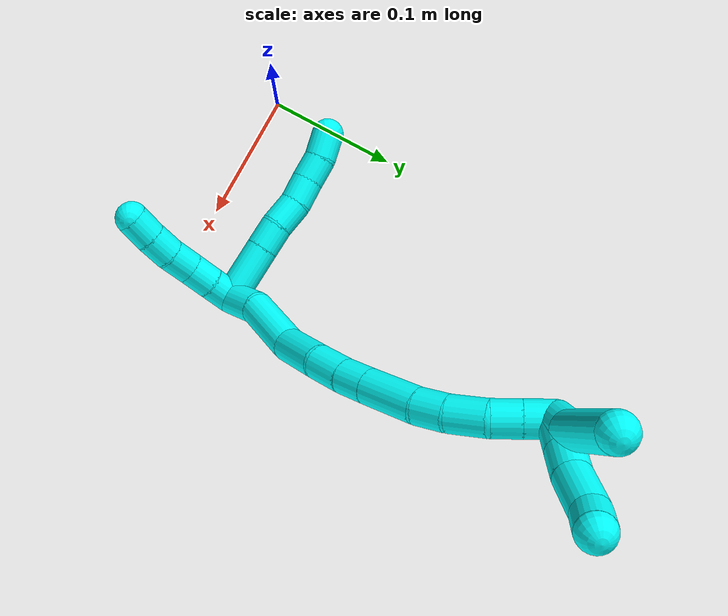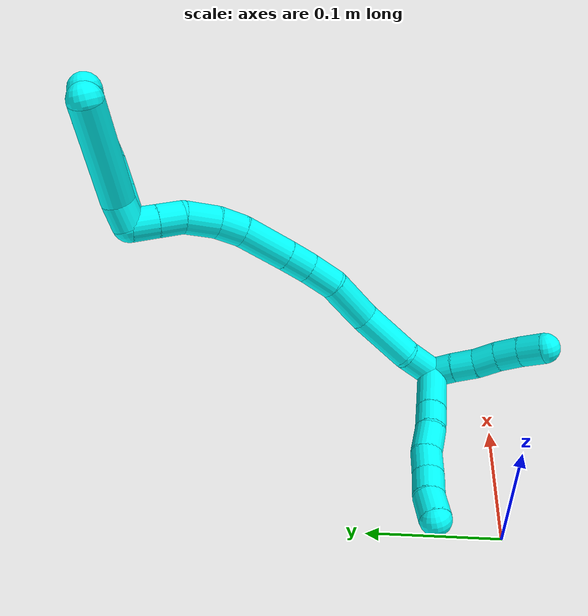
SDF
<sdf version="1.7">
 <world name="default">
  <model name="3">
   <static>0</static>
   <link name="3">
    <collision name="collision-cylinder-e_1_2_8">
     <pose>-0.019327 -0.008584 -0.007434 2.28451 -1.03957 -1.79418</pose>
     <geometry><cylinder><radius>0.0125</radius><length>0.044832</length></cylinder></geometry>
     <surface>
      <friction><ode><mu>1.16</mu><mu2>1.16</mu2><slip1>0</slip1><slip2>0</slip2></ode></friction>
      <contact><ode><kp>1e+06</kp><kd>1</kd><max_vel>0</max_vel><min_depth>0.001</min_depth></ode></contact>
     </surface>
    </collision>
    <visual name="visual-cylinder-e_1_2_8">
     <pose>-0.019327 -0.008584 -0.007434 2.28451 -1.03957 -1.79418</pose>
     <geometry><cylinder><radius>0.0125</radius><length>0.044832</length></cylinder></geometry>
     <material><ambient>0.003922 1 0.996078 1</ambient></material>
    </visual>
    <collision name="collision-cylinder-e_2_8_9">
     <pose>-0.047657 -0.021103 -0.018401 2.30239 -1.03976 -1.81757</pose>
     <geometry><cylinder><radius>0.0125</radius><length>0.020883</length></cylinder></geometry>
     <surface>
      <friction><ode><mu>1.16</mu><mu2>1.16</mu2><slip1>0</slip1><slip2>0</slip2></ode></friction>
      <contact><ode><kp>1e+06</kp><kd>1</kd><max_vel>0</max_vel><min_depth>0.001</min_depth></ode></contact>
     </surface>
    </collision>
    <visual name="visual-cylinder-e_2_8_9">
     <pose>-0.047657 -0.021103 -0.018401 2.30239 -1.03976 -1.81757</pose>
     <geometry><cylinder><radius>0.0125</radius><length>0.020883</length></cylinder></geometry>
     <material><ambient>0.003922 1 0.996078 1</ambient></material>
    </visual>
    <collision name="collision-cylinder-e_3_9_10">
     <pose>-0.066679 -0.027612 -0.026783 2.65363 -1.06949 -2.34584</pose>
     <geometry><cylinder><radius>0.0125</radius><length>0.022848</length></cylinder></geometry>
     <surface>
      <friction><ode><mu>1.16</mu><mu2>1.16</mu2><slip1>0</slip1><slip2>0</slip2></ode></friction>
      <contact><ode><kp>1e+06</kp><kd>1</kd><max_vel>0</max_vel><min_depth>0.001</min_depth></ode></contact>
     </surface>
    </collision>
    <visual name="visual-cylinder-e_3_9_10">
     <pose>-0.066679 -0.027612 -0.026783 2.65363 -1.06949 -2.34584</pose>
     <geometry><cylinder><radius>0.0125</radius><length>0.022848</length></cylinder></geometry>
     <material><ambient>0.003922 1 0.996078 1</ambient></material>
    </visual>
    <collision name="collision-cylinder-e_4_10_11">
     <pose>-0.084872 -0.034604 -0.036016 2.35236 -0.92003 -1.74364</pose>
     <geometry><cylinder><radius>0.0125</radius><length>0.020548</length></cylinder></geometry>
     <surface>
      <friction><ode><mu>1.16</mu><mu2>1.16</mu2><slip1>0</slip1><slip2>0</slip2></ode></friction>
      <contact><ode><kp>1e+06</kp><kd>1</kd><max_vel>0</max_vel><min_depth>0.001</min_depth></ode></contact>
     </surface>
    </collision>
    <visual name="visual-cylinder-e_4_10_11">
     <pose>-0.084872 -0.034604 -0.036016 2.35236 -0.92003 -1.74364</pose>
     <geometry><cylinder><radius>0.0125</radius><length>0.020548</length></cylinder></geometry>
     <material><ambient>0.003922 1 0.996078 1</ambient></material>
    </visual>
    <collision name="collision-cylinder-e_5_11_12">
     <pose>-0.101584 -0.043265 -0.043948 2.26713 -0.995962 -1.72141</pose>
     <geometry><cylinder><radius>0.0125</radius><length>0.020346</length></cylinder></geometry>
     <surface>
      <friction><ode><mu>1.16</mu><mu2>1.16</mu2><slip1>0</slip1><slip2>0</slip2></ode></friction>
      <contact><ode><kp>1e+06</kp><kd>1</kd><max_vel>0</max_vel><min_depth>0.001</min_depth></ode></contact>
     </surface>
    </collision>
    <visual name="visual-cylinder-e_5_11_12">
     <pose>-0.101584 -0.043265 -0.043948 2.26713 -0.995962 -1.72141</pose>
     <geometry><cylinder><radius>0.0125</radius><length>0.020346</length></cylinder></geometry>
     <material><ambient>0.003922 1 0.996078 1</ambient></material>
    </visual>
    <collision name="collision-cylinder-e_6_12_6">
     <pose>-0.117417 -0.053497 -0.051548 2.16573 -0.789742 -1.33137</pose>
     <geometry><cylinder><radius>0.0125</radius><length>0.020542</length></cylinder></geometry>
     <surface>
      <friction><ode><mu>1.16</mu><mu2>1.16</mu2><slip1>0</slip1><slip2>0</slip2></ode></friction>
      <contact><ode><kp>1e+06</kp><kd>1</kd><max_vel>0</max_vel><min_depth>0.001</min_depth></ode></contact>
     </surface>
    </collision>
    <visual name="visual-cylinder-e_6_12_6">
     <pose>-0.117417 -0.053497 -0.051548 2.16573 -0.789742 -1.33137</pose>
     <geometry><cylinder><radius>0.0125</radius><length>0.020542</length></cylinder></geometry>
     <material><ambient>0.003922 1 0.996078 1</ambient></material>
    </visual>
    <collision name="collision-cylinder-e_1_2_13">
     <pose>0.002968 -0.009422 0.001557 1.40705 0.301329 0.256169</pose>
     <geometry><cylinder><radius>0.0125</radius><length>0.02</length></cylinder></geometry>
     <surface>
      <friction><ode><mu>1.16</mu><mu2>1.16</mu2><slip1>0</slip1><slip2>0</slip2></ode></friction>
      <contact><ode><kp>1e+06</kp><kd>1</kd><max_vel>0</max_vel><min_depth>0.001</min_depth></ode></contact>
     </surface>
    </collision>
    <visual name="visual-cylinder-e_1_2_13">
     <pose>0.002968 -0.009422 0.001557 1.40705 0.301329 0.256169</pose>
     <geometry><cylinder><radius>0.0125</radius><length>0.02</length></cylinder></geometry>
     <material><ambient>0.003922 1 0.996078 1</ambient></material>
    </visual>
    <collision name="collision-cylinder-e_2_13_14">
     <pose>0.009097 -0.028279 0.004098 1.46679 0.321677 0.290315</pose>
     <geometry><cylinder><radius>0.0125</radius><length>0.02</length></cylinder></geometry>
     <surface>
      <friction><ode><mu>1.16</mu><mu2>1.16</mu2><slip1>0</slip1><slip2>0</slip2></ode></friction>
      <contact><ode><kp>1e+06</kp><kd>1</kd><max_vel>0</max_vel><min_depth>0.001</min_depth></ode></contact>
     </surface>
    </collision>
    <visual name="visual-cylinder-e_2_13_14">
     <pose>0.009097 -0.028279 0.004098 1.46679 0.321677 0.290315</pose>
     <geometry><cylinder><radius>0.0125</radius><length>0.02</length></cylinder></geometry>
     <material><ambient>0.003922 1 0.996078 1</ambient></material>
    </visual>
    <collision name="collision-cylinder-e_3_14_15">
     <pose>0.014909 -0.047029 0.00758 1.30895 0.268181 0.206279</pose>
     <geometry><cylinder><radius>0.0125</radius><length>0.02</length></cylinder></geometry>
     <surface>
      <friction><ode><mu>1.16</mu><mu2>1.16</mu2><slip1>0</slip1><slip2>0</slip2></ode></friction>
      <contact><ode><kp>1e+06</kp><kd>1</kd><max_vel>0</max_vel><min_depth>0.001</min_depth></ode></contact>
     </surface>
    </collision>
    <visual name="visual-cylinder-e_3_14_15">
     <pose>0.014909 -0.047029 0.00758 1.30895 0.268181 0.206279</pose>
     <geometry><cylinder><radius>0.0125</radius><length>0.02</length></cylinder></geometry>
     <material><ambient>0.003922 1 0.996078 1</ambient></material>
    </visual>
    <collision name="collision-cylinder-e_4_15_16">
     <pose>0.019379 -0.066024 0.011798 1.39475 0.183058 0.153496</pose>
     <geometry><cylinder><radius>0.0125</radius><length>0.02</length></cylinder></geometry>
     <surface>
      <friction><ode><mu>1.16</mu><mu2>1.16</mu2><slip1>0</slip1><slip2>0</slip2></ode></friction>
      <contact><ode><kp>1e+06</kp><kd>1</kd><max_vel>0</max_vel><min_depth>0.001</min_depth></ode></contact>
     </surface>
    </collision>
    <visual name="visual-cylinder-e_4_15_16">
     <pose>0.019379 -0.066024 0.011798 1.39475 0.183058 0.153496</pose>
     <geometry><cylinder><radius>0.0125</radius><length>0.02</length></cylinder></geometry>
     <material><ambient>0.003922 1 0.996078 1</ambient></material>
    </visual>
    <collision name="collision-cylinder-e_5_16_5">
     <pose>0.022439 -0.085538 0.014851 1.43624 0.124269 0.108612</pose>
     <geometry><cylinder><radius>0.0125</radius><length>0.02</length></cylinder></geometry>
     <surface>
      <friction><ode><mu>1.16</mu><mu2>1.16</mu2><slip1>0</slip1><slip2>0</slip2></ode></friction>
      <contact><ode><kp>1e+06</kp><kd>1</kd><max_vel>0</max_vel><min_depth>0.001</min_depth></ode></contact>
     </surface>
    </collision>
    <visual name="visual-cylinder-e_5_16_5">
     <pose>0.022439 -0.085538 0.014851 1.43624 0.124269 0.108612</pose>
     <geometry><cylinder><radius>0.0125</radius><length>0.02</length></cylinder></geometry>
     <material><ambient>0.003922 1 0.996078 1</ambient></material>
    </visual>
    <collision name="collision-cylinder-e_1_2_17">
     <pose>-0.009155 0.004944 0.012451 -0.377976 -0.599462 0.118084</pose>
     <geometry><cylinder><radius>0.0125</radius><length>0.032452</length></cylinder></geometry>
     <surface>
      <friction><ode><mu>1.16</mu><mu2>1.16</mu2><slip1>0</slip1><slip2>0</slip2></ode></friction>
      <contact><ode><kp>1e+06</kp><kd>1</kd><max_vel>0</max_vel><min_depth>0.001</min_depth></ode></contact>
     </surface>
    </collision>
    <visual name="visual-cylinder-e_1_2_17">
     <pose>-0.009155 0.004944 0.012451 -0.377976 -0.599462 0.118084</pose>
     <geometry><cylinder><radius>0.0125</radius><length>0.032452</length></cylinder></geometry>
     <material><ambient>0.003922 1 0.996078 1</ambient></material>
    </visual>
    <collision name="collision-cylinder-e_2_17_18">
     <pose>-0.02567 0.021726 0.044892 -0.534654 -0.30684 0.084653</pose>
     <geometry><cylinder><radius>0.0125</radius><length>0.048741</length></cylinder></geometry>
     <surface>
      <friction><ode><mu>1.16</mu><mu2>1.16</mu2><slip1>0</slip1><slip2>0</slip2></ode></friction>
      <contact><ode><kp>1e+06</kp><kd>1</kd><max_vel>0</max_vel><min_depth>0.001</min_depth></ode></contact>
     </surface>
    </collision>
    <visual name="visual-cylinder-e_2_17_18">
     <pose>-0.02567 0.021726 0.044892 -0.534654 -0.30684 0.084653</pose>
     <geometry><cylinder><radius>0.0125</radius><length>0.048741</length></cylinder></geometry>
     <material><ambient>0.003922 1 0.996078 1</ambient></material>
    </visual>
    <collision name="collision-cylinder-e_3_18_19">
     <pose>-0.042764 0.03777 0.083066 -0.227351 -0.480707 0.055948</pose>
     <geometry><cylinder><radius>0.0125</radius><length>0.042097</length></cylinder></geometry>
     <surface>
      <friction><ode><mu>1.16</mu><mu2>1.16</mu2><slip1>0</slip1><slip2>0</slip2></ode></friction>
      <contact><ode><kp>1e+06</kp><kd>1</kd><max_vel>0</max_vel><min_depth>0.001</min_depth></ode></contact>
     </surface>
    </collision>
    <visual name="visual-cylinder-e_3_18_19">
     <pose>-0.042764 0.03777 0.083066 -0.227351 -0.480707 0.055948</pose>
     <geometry><cylinder><radius>0.0125</radius><length>0.042097</length></cylinder></geometry>
     <material><ambient>0.003922 1 0.996078 1</ambient></material>
    </visual>
    <collision name="collision-cylinder-e_4_19_20">
     <pose>-0.059511 0.047146 0.111079 -0.484117 -0.563223 0.142614</pose>
     <geometry><cylinder><radius>0.0125</radius><length>0.026271</length></cylinder></geometry>
     <surface>
      <friction><ode><mu>1.16</mu><mu2>1.16</mu2><slip1>0</slip1><slip2>0</slip2></ode></friction>
      <contact><ode><kp>1e+06</kp><kd>1</kd><max_vel>0</max_vel><min_depth>0.001</min_depth></ode></contact>
     </surface>
    </collision>
    <visual name="visual-cylinder-e_4_19_20">
     <pose>-0.059511 0.047146 0.111079 -0.484117 -0.563223 0.142614</pose>
     <geometry><cylinder><radius>0.0125</radius><length>0.026271</length></cylinder></geometry>
     <material><ambient>0.003922 1 0.996078 1</ambient></material>
    </visual>
    <collision name="collision-cylinder-e_5_20_21">
     <pose>-0.072993 0.056336 0.128598 -0.481754 -0.640621 0.162619</pose>
     <geometry><cylinder><radius>0.0125</radius><length>0.021644</length></cylinder></geometry>
     <surface>
      <friction><ode><mu>1.16</mu><mu2>1.16</mu2><slip1>0</slip1><slip2>0</slip2></ode></friction>
      <contact><ode><kp>1e+06</kp><kd>1</kd><max_vel>0</max_vel><min_depth>0.001</min_depth></ode></contact>
     </surface>
    </collision>
    <visual name="visual-cylinder-e_5_20_21">
     <pose>-0.072993 0.056336 0.128598 -0.481754 -0.640621 0.162619</pose>
     <geometry><cylinder><radius>0.0125</radius><length>0.021644</length></cylinder></geometry>
     <material><ambient>0.003922 1 0.996078 1</ambient></material>
    </visual>
    <collision name="collision-cylinder-e_6_21_22">
     <pose>-0.091923 0.067969 0.150463 -0.492838 -0.659003 0.171608</pose>
     <geometry><cylinder><radius>0.0125</radius><length>0.040704</length></cylinder></geometry>
     <surface>
      <friction><ode><mu>1.16</mu><mu2>1.16</mu2><slip1>0</slip1><slip2>0</slip2></ode></friction>
      <contact><ode><kp>1e+06</kp><kd>1</kd><max_vel>0</max_vel><min_depth>0.001</min_depth></ode></contact>
     </surface>
    </collision>
    <visual name="visual-cylinder-e_6_21_22">
     <pose>-0.091923 0.067969 0.150463 -0.492838 -0.659003 0.171608</pose>
     <geometry><cylinder><radius>0.0125</radius><length>0.040704</length></cylinder></geometry>
     <material><ambient>0.003922 1 0.996078 1</ambient></material>
    </visual>
    <collision name="collision-cylinder-e_7_22_23">
     <pose>-0.112146 0.079739 0.170763 -0.596406 -0.809074 0.261697</pose>
     <geometry><cylinder><radius>0.0125</radius><length>0.02145</length></cylinder></geometry>
     <surface>
      <friction><ode><mu>1.16</mu><mu2>1.16</mu2><slip1>0</slip1><slip2>0</slip2></ode></friction>
      <contact><ode><kp>1e+06</kp><kd>1</kd><max_vel>0</max_vel><min_depth>0.001</min_depth></ode></contact>
     </surface>
    </collision>
    <visual name="visual-cylinder-e_7_22_23">
     <pose>-0.112146 0.079739 0.170763 -0.596406 -0.809074 0.261697</pose>
     <geometry><cylinder><radius>0.0125</radius><length>0.02145</length></cylinder></geometry>
     <material><ambient>0.003922 1 0.996078 1</ambient></material>
    </visual>
    <collision name="collision-cylinder-e_8_23_24">
     <pose>-0.130779 0.089211 0.182451 -0.762405 -0.954864 0.408922</pose>
     <geometry><cylinder><radius>0.0125</radius><length>0.026639</length></cylinder></geometry>
     <surface>
      <friction><ode><mu>1.16</mu><mu2>1.16</mu2><slip1>0</slip1><slip2>0</slip2></ode></friction>
      <contact><ode><kp>1e+06</kp><kd>1</kd><max_vel>0</max_vel><min_depth>0.001</min_depth></ode></contact>
     </surface>
    </collision>
    <visual name="visual-cylinder-e_8_23_24">
     <pose>-0.130779 0.089211 0.182451 -0.762405 -0.954864 0.408922</pose>
     <geometry><cylinder><radius>0.0125</radius><length>0.026639</length></cylinder></geometry>
     <material><ambient>0.003922 1 0.996078 1</ambient></material>
    </visual>
    <collision name="collision-cylinder-e_9_24_25">
     <pose>-0.150366 0.09925 0.189332 -1.29925 -1.05828 0.83603</pose>
     <geometry><cylinder><radius>0.0125</radius><length>0.020001</length></cylinder></geometry>
     <surface>
      <friction><ode><mu>1.16</mu><mu2>1.16</mu2><slip1>0</slip1><slip2>0</slip2></ode></friction>
      <contact><ode><kp>1e+06</kp><kd>1</kd><max_vel>0</max_vel><min_depth>0.001</min_depth></ode></contact>
     </surface>
    </collision>
    <visual name="visual-cylinder-e_9_24_25">
     <pose>-0.150366 0.09925 0.189332 -1.29925 -1.05828 0.83603</pose>
     <geometry><cylinder><radius>0.0125</radius><length>0.020001</length></cylinder></geometry>
     <material><ambient>0.003922 1 0.996078 1</ambient></material>
    </visual>
    <collision name="collision-cylinder-e_10_25_1">
     <pose>-0.167751 0.108779 0.191971 -1.3019 -1.04906 0.83021</pose>
     <geometry><cylinder><radius>0.0125</radius><length>0.02</length></cylinder></geometry>
     <surface>
      <friction><ode><mu>1.16</mu><mu2>1.16</mu2><slip1>0</slip1><slip2>0</slip2></ode></friction>
      <contact><ode><kp>1e+06</kp><kd>1</kd><max_vel>0</max_vel><min_depth>0.001</min_depth></ode></contact>
     </surface>
    </collision>
    <visual name="visual-cylinder-e_10_25_1">
     <pose>-0.167751 0.108779 0.191971 -1.3019 -1.04906 0.83021</pose>
     <geometry><cylinder><radius>0.0125</radius><length>0.02</length></cylinder></geometry>
     <material><ambient>0.003922 1 0.996078 1</ambient></material>
    </visual>
    <collision name="collision-cylinder-e_1_1_26">
     <pose>-0.178554 0.112896 0.203143 0.06975 -0.212779 -0.007452</pose>
     <geometry><cylinder><radius>0.0125</radius><length>0.020199</length></cylinder></geometry>
     <surface>
      <friction><ode><mu>1.16</mu><mu2>1.16</mu2><slip1>0</slip1><slip2>0</slip2></ode></friction>
      <contact><ode><kp>1e+06</kp><kd>1</kd><max_vel>0</max_vel><min_depth>0.001</min_depth></ode></contact>
     </surface>
    </collision>
    <visual name="visual-cylinder-e_1_1_26">
     <pose>-0.178554 0.112896 0.203143 0.06975 -0.212779 -0.007452</pose>
     <geometry><cylinder><radius>0.0125</radius><length>0.020199</length></cylinder></geometry>
     <material><ambient>0.003922 1 0.996078 1</ambient></material>
    </visual>
    <collision name="collision-cylinder-e_2_26_4">
     <pose>-0.192553 0.097836 0.24827 0.386846 -0.301967 -0.059583</pose>
     <geometry><cylinder><radius>0.0125</radius><length>0.079801</length></cylinder></geometry>
     <surface>
      <friction><ode><mu>1.16</mu><mu2>1.16</mu2><slip1>0</slip1><slip2>0</slip2></ode></friction>
      <contact><ode><kp>1e+06</kp><kd>1</kd><max_vel>0</max_vel><min_depth>0.001</min_depth></ode></contact>
     </surface>
    </collision>
    <visual name="visual-cylinder-e_2_26_4">
     <pose>-0.192553 0.097836 0.24827 0.386846 -0.301967 -0.059583</pose>
     <geometry><cylinder><radius>0.0125</radius><length>0.079801</length></cylinder></geometry>
     <material><ambient>0.003922 1 0.996078 1</ambient></material>
    </visual>
    <collision name="collision-cylinder-e_1_1_27">
     <pose>-0.174611 0.116264 0.206526 -0.199891 0.133253 -0.013382</pose>
     <geometry><cylinder><radius>0.0125</radius><length>0.027242</length></cylinder></geometry>
     <surface>
      <friction><ode><mu>1.16</mu><mu2>1.16</mu2><slip1>0</slip1><slip2>0</slip2></ode></friction>
      <contact><ode><kp>1e+06</kp><kd>1</kd><max_vel>0</max_vel><min_depth>0.001</min_depth></ode></contact>
     </surface>
    </collision>
    <visual name="visual-cylinder-e_1_1_27">
     <pose>-0.174611 0.116264 0.206526 -0.199891 0.133253 -0.013382</pose>
     <geometry><cylinder><radius>0.0125</radius><length>0.027242</length></cylinder></geometry>
     <material><ambient>0.003922 1 0.996078 1</ambient></material>
    </visual>
    <collision name="collision-cylinder-e_2_27_28">
     <pose>-0.171513 0.12106 0.230032 -0.203016 0.122242 -0.012467</pose>
     <geometry><cylinder><radius>0.0125</radius><length>0.021138</length></cylinder></geometry>
     <surface>
      <friction><ode><mu>1.16</mu><mu2>1.16</mu2><slip1>0</slip1><slip2>0</slip2></ode></friction>
      <contact><ode><kp>1e+06</kp><kd>1</kd><max_vel>0</max_vel><min_depth>0.001</min_depth></ode></contact>
     </surface>
    </collision>
    <visual name="visual-cylinder-e_2_27_28">
     <pose>-0.171513 0.12106 0.230032 -0.203016 0.122242 -0.012467</pose>
     <geometry><cylinder><radius>0.0125</radius><length>0.021138</length></cylinder></geometry>
     <material><ambient>0.003922 1 0.996078 1</ambient></material>
    </visual>
    <collision name="collision-cylinder-e_3_28_29">
     <pose>-0.170401 0.125879 0.255664 -0.17428 -0.011326 0.000989</pose>
     <geometry><cylinder><radius>0.0125</radius><length>0.031189</length></cylinder></geometry>
     <surface>
      <friction><ode><mu>1.16</mu><mu2>1.16</mu2><slip1>0</slip1><slip2>0</slip2></ode></friction>
      <contact><ode><kp>1e+06</kp><kd>1</kd><max_vel>0</max_vel><min_depth>0.001</min_depth></ode></contact>
     </surface>
    </collision>
    <visual name="visual-cylinder-e_3_28_29">
     <pose>-0.170401 0.125879 0.255664 -0.17428 -0.011326 0.000989</pose>
     <geometry><cylinder><radius>0.0125</radius><length>0.031189</length></cylinder></geometry>
     <material><ambient>0.003922 1 0.996078 1</ambient></material>
    </visual>
    <collision name="collision-cylinder-e_4_29_3">
     <pose>-0.169889 0.127167 0.281115 0.139388 0.067423 0.004708</pose>
     <geometry><cylinder><radius>0.0125</radius><length>0.020431</length></cylinder></geometry>
     <surface>
      <friction><ode><mu>1.16</mu><mu2>1.16</mu2><slip1>0</slip1><slip2>0</slip2></ode></friction>
      <contact><ode><kp>1e+06</kp><kd>1</kd><max_vel>0</max_vel><min_depth>0.001</min_depth></ode></contact>
     </surface>
    </collision>
    <visual name="visual-cylinder-e_4_29_3">
     <pose>-0.169889 0.127167 0.281115 0.139388 0.067423 0.004708</pose>
     <geometry><cylinder><radius>0.0125</radius><length>0.020431</length></cylinder></geometry>
     <material><ambient>0.003922 1 0.996078 1</ambient></material>
    </visual>
    <collision name="collision-sphere-3">
     <pose>-0.169201 0.125751 0.291209 0 -0 0</pose>
     <geometry><sphere><radius>0.0125</radius></sphere></geometry>
     <surface>
      <friction><ode><mu>1.16</mu><mu2>1.16</mu2><slip1>0</slip1><slip2>0</slip2></ode></friction>
      <contact><ode><kp>1e+06</kp><kd>1</kd><max_vel>0</max_vel><min_depth>0.001</min_depth></ode></contact>
     </surface>
    </collision>
    <visual name="visual-sphere-3">
     <pose>-0.169201 0.125751 0.291209 0 -0 0</pose>
     <geometry><sphere><radius>0.0125</radius></sphere></geometry>
     <material><ambient>0.003922 1 0.996078 1</ambient></material>
    </visual>
    <collision name="collision-sphere-29">
     <pose>-0.170577 0.128583 0.271022 0 -0 0</pose>
     <geometry><sphere><radius>0.0125</radius></sphere></geometry>
     <surface>
      <friction><ode><mu>1.16</mu><mu2>1.16</mu2><slip1>0</slip1><slip2>0</slip2></ode></friction>
      <contact><ode><kp>1e+06</kp><kd>1</kd><max_vel>0</max_vel><min_depth>0.001</min_depth></ode></contact>
     </surface>
    </collision>
    <visual name="visual-sphere-29">
     <pose>-0.170577 0.128583 0.271022 0 -0 0</pose>
     <geometry><sphere><radius>0.0125</radius></sphere></geometry>
     <material><ambient>0.003922 1 0.996078 1</ambient></material>
    </visual>
    <collision name="collision-sphere-28">
     <pose>-0.170224 0.123175 0.240307 0 -0 0</pose>
     <geometry><sphere><radius>0.0125</radius></sphere></geometry>
     <surface>
      <friction><ode><mu>1.16</mu><mu2>1.16</mu2><slip1>0</slip1><slip2>0</slip2></ode></friction>
      <contact><ode><kp>1e+06</kp><kd>1</kd><max_vel>0</max_vel><min_depth>0.001</min_depth></ode></contact>
     </surface>
    </collision>
    <visual name="visual-sphere-28">
     <pose>-0.170224 0.123175 0.240307 0 -0 0</pose>
     <geometry><sphere><radius>0.0125</radius></sphere></geometry>
     <material><ambient>0.003922 1 0.996078 1</ambient></material>
    </visual>
    <collision name="collision-sphere-27">
     <pose>-0.172802 0.118945 0.219757 0 -0 0</pose>
     <geometry><sphere><radius>0.0125</radius></sphere></geometry>
     <surface>
      <friction><ode><mu>1.16</mu><mu2>1.16</mu2><slip1>0</slip1><slip2>0</slip2></ode></friction>
      <contact><ode><kp>1e+06</kp><kd>1</kd><max_vel>0</max_vel><min_depth>0.001</min_depth></ode></contact>
     </surface>
    </collision>
    <visual name="visual-sphere-27">
     <pose>-0.172802 0.118945 0.219757 0 -0 0</pose>
     <geometry><sphere><radius>0.0125</radius></sphere></geometry>
     <material><ambient>0.003922 1 0.996078 1</ambient></material>
    </visual>
    <collision name="collision-sphere-4">
     <pose>-0.204419 0.083463 0.28355 0 -0 0</pose>
     <geometry><sphere><radius>0.0125</radius></sphere></geometry>
     <surface>
      <friction><ode><mu>1.16</mu><mu2>1.16</mu2><slip1>0</slip1><slip2>0</slip2></ode></friction>
      <contact><ode><kp>1e+06</kp><kd>1</kd><max_vel>0</max_vel><min_depth>0.001</min_depth></ode></contact>
     </surface>
    </collision>
    <visual name="visual-sphere-4">
     <pose>-0.204419 0.083463 0.28355 0 -0 0</pose>
     <geometry><sphere><radius>0.0125</radius></sphere></geometry>
     <material><ambient>0.003922 1 0.996078 1</ambient></material>
    </visual>
    <collision name="collision-sphere-26">
     <pose>-0.180687 0.112208 0.21299 0 -0 0</pose>
     <geometry><sphere><radius>0.0125</radius></sphere></geometry>
     <surface>
      <friction><ode><mu>1.16</mu><mu2>1.16</mu2><slip1>0</slip1><slip2>0</slip2></ode></friction>
      <contact><ode><kp>1e+06</kp><kd>1</kd><max_vel>0</max_vel><min_depth>0.001</min_depth></ode></contact>
     </surface>
    </collision>
    <visual name="visual-sphere-26">
     <pose>-0.180687 0.112208 0.21299 0 -0 0</pose>
     <geometry><sphere><radius>0.0125</radius></sphere></geometry>
     <material><ambient>0.003922 1 0.996078 1</ambient></material>
    </visual>
    <collision name="collision-sphere-1">
     <pose>-0.176421 0.113584 0.193295 0 -0 0</pose>
     <geometry><sphere><radius>0.0125</radius></sphere></geometry>
     <surface>
      <friction><ode><mu>1.16</mu><mu2>1.16</mu2><slip1>0</slip1><slip2>0</slip2></ode></friction>
      <contact><ode><kp>1e+06</kp><kd>1</kd><max_vel>0</max_vel><min_depth>0.001</min_depth></ode></contact>
     </surface>
    </collision>
    <visual name="visual-sphere-1">
     <pose>-0.176421 0.113584 0.193295 0 -0 0</pose>
     <geometry><sphere><radius>0.0125</radius></sphere></geometry>
     <material><ambient>0.003922 1 0.996078 1</ambient></material>
    </visual>
    <collision name="collision-sphere-25">
     <pose>-0.159082 0.103974 0.190647 0 -0 0</pose>
     <geometry><sphere><radius>0.0125</radius></sphere></geometry>
     <surface>
      <friction><ode><mu>1.16</mu><mu2>1.16</mu2><slip1>0</slip1><slip2>0</slip2></ode></friction>
      <contact><ode><kp>1e+06</kp><kd>1</kd><max_vel>0</max_vel><min_depth>0.001</min_depth></ode></contact>
     </surface>
    </collision>
    <visual name="visual-sphere-25">
     <pose>-0.159082 0.103974 0.190647 0 -0 0</pose>
     <geometry><sphere><radius>0.0125</radius></sphere></geometry>
     <material><ambient>0.003922 1 0.996078 1</ambient></material>
    </visual>
    <collision name="collision-sphere-24">
     <pose>-0.141651 0.094526 0.188016 0 -0 0</pose>
     <geometry><sphere><radius>0.0125</radius></sphere></geometry>
     <surface>
      <friction><ode><mu>1.16</mu><mu2>1.16</mu2><slip1>0</slip1><slip2>0</slip2></ode></friction>
      <contact><ode><kp>1e+06</kp><kd>1</kd><max_vel>0</max_vel><min_depth>0.001</min_depth></ode></contact>
     </surface>
    </collision>
    <visual name="visual-sphere-24">
     <pose>-0.141651 0.094526 0.188016 0 -0 0</pose>
     <geometry><sphere><radius>0.0125</radius></sphere></geometry>
     <material><ambient>0.003922 1 0.996078 1</ambient></material>
    </visual>
    <collision name="collision-sphere-23">
     <pose>-0.119907 0.083897 0.176887 0 -0 0</pose>
     <geometry><sphere><radius>0.0125</radius></sphere></geometry>
     <surface>
      <friction><ode><mu>1.16</mu><mu2>1.16</mu2><slip1>0</slip1><slip2>0</slip2></ode></friction>
      <contact><ode><kp>1e+06</kp><kd>1</kd><max_vel>0</max_vel><min_depth>0.001</min_depth></ode></contact>
     </surface>
    </collision>
    <visual name="visual-sphere-23">
     <pose>-0.119907 0.083897 0.176887 0 -0 0</pose>
     <geometry><sphere><radius>0.0125</radius></sphere></geometry>
     <material><ambient>0.003922 1 0.996078 1</ambient></material>
    </visual>
    <collision name="collision-sphere-22">
     <pose>-0.104385 0.075582 0.164638 0 -0 0</pose>
     <geometry><sphere><radius>0.0125</radius></sphere></geometry>
     <surface>
      <friction><ode><mu>1.16</mu><mu2>1.16</mu2><slip1>0</slip1><slip2>0</slip2></ode></friction>
      <contact><ode><kp>1e+06</kp><kd>1</kd><max_vel>0</max_vel><min_depth>0.001</min_depth></ode></contact>
     </surface>
    </collision>
    <visual name="visual-sphere-22">
     <pose>-0.104385 0.075582 0.164638 0 -0 0</pose>
     <geometry><sphere><radius>0.0125</radius></sphere></geometry>
     <material><ambient>0.003922 1 0.996078 1</ambient></material>
    </visual>
    <collision name="collision-sphere-21">
     <pose>-0.079461 0.060356 0.136287 0 -0 0</pose>
     <geometry><sphere><radius>0.0125</radius></sphere></geometry>
     <surface>
      <friction><ode><mu>1.16</mu><mu2>1.16</mu2><slip1>0</slip1><slip2>0</slip2></ode></friction>
      <contact><ode><kp>1e+06</kp><kd>1</kd><max_vel>0</max_vel><min_depth>0.001</min_depth></ode></contact>
     </surface>
    </collision>
    <visual name="visual-sphere-21">
     <pose>-0.079461 0.060356 0.136287 0 -0 0</pose>
     <geometry><sphere><radius>0.0125</radius></sphere></geometry>
     <material><ambient>0.003922 1 0.996078 1</ambient></material>
    </visual>
    <collision name="collision-sphere-12">
     <pose>-0.110123 -0.047508 -0.047496 0 -0 0</pose>
     <geometry><sphere><radius>0.0125</radius></sphere></geometry>
     <surface>
      <friction><ode><mu>1.16</mu><mu2>1.16</mu2><slip1>0</slip1><slip2>0</slip2></ode></friction>
      <contact><ode><kp>1e+06</kp><kd>1</kd><max_vel>0</max_vel><min_depth>0.001</min_depth></ode></contact>
     </surface>
    </collision>
    <visual name="visual-sphere-12">
     <pose>-0.110123 -0.047508 -0.047496 0 -0 0</pose>
     <geometry><sphere><radius>0.0125</radius></sphere></geometry>
     <material><ambient>0.003922 1 0.996078 1</ambient></material>
    </visual>
    <collision name="collision-sphere-11">
     <pose>-0.093046 -0.039022 -0.0404 0 -0 0</pose>
     <geometry><sphere><radius>0.0125</radius></sphere></geometry>
     <surface>
      <friction><ode><mu>1.16</mu><mu2>1.16</mu2><slip1>0</slip1><slip2>0</slip2></ode></friction>
      <contact><ode><kp>1e+06</kp><kd>1</kd><max_vel>0</max_vel><min_depth>0.001</min_depth></ode></contact>
     </surface>
    </collision>
    <visual name="visual-sphere-11">
     <pose>-0.093046 -0.039022 -0.0404 0 -0 0</pose>
     <geometry><sphere><radius>0.0125</radius></sphere></geometry>
     <material><ambient>0.003922 1 0.996078 1</ambient></material>
    </visual>
    <collision name="collision-sphere-10">
     <pose>-0.076698 -0.030186 -0.031632 0 -0 0</pose>
     <geometry><sphere><radius>0.0125</radius></sphere></geometry>
     <surface>
      <friction><ode><mu>1.16</mu><mu2>1.16</mu2><slip1>0</slip1><slip2>0</slip2></ode></friction>
      <contact><ode><kp>1e+06</kp><kd>1</kd><max_vel>0</max_vel><min_depth>0.001</min_depth></ode></contact>
     </surface>
    </collision>
    <visual name="visual-sphere-10">
     <pose>-0.076698 -0.030186 -0.031632 0 -0 0</pose>
     <geometry><sphere><radius>0.0125</radius></sphere></geometry>
     <material><ambient>0.003922 1 0.996078 1</ambient></material>
    </visual>
    <collision name="collision-sphere-9">
     <pose>-0.056661 -0.025038 -0.021933 0 -0 0</pose>
     <geometry><sphere><radius>0.0125</radius></sphere></geometry>
     <surface>
      <friction><ode><mu>1.16</mu><mu2>1.16</mu2><slip1>0</slip1><slip2>0</slip2></ode></friction>
      <contact><ode><kp>1e+06</kp><kd>1</kd><max_vel>0</max_vel><min_depth>0.001</min_depth></ode></contact>
     </surface>
    </collision>
    <visual name="visual-sphere-9">
     <pose>-0.056661 -0.025038 -0.021933 0 -0 0</pose>
     <geometry><sphere><radius>0.0125</radius></sphere></geometry>
     <material><ambient>0.003922 1 0.996078 1</ambient></material>
    </visual>
    <collision name="collision-sphere-2">
     <geometry><sphere><radius>0.0125</radius></sphere></geometry>
     <surface>
      <friction><ode><mu>1.16</mu><mu2>1.16</mu2><slip1>0</slip1><slip2>0</slip2></ode></friction>
      <contact><ode><kp>1e+06</kp><kd>1</kd><max_vel>0</max_vel><min_depth>0.001</min_depth></ode></contact>
     </surface>
    </collision>
    <visual name="visual-sphere-2">
     <geometry><sphere><radius>0.0125</radius></sphere></geometry>
     <material><ambient>0.003922 1 0.996078 1</ambient></material>
    </visual>
    <collision name="collision-sphere-19">
     <pose>-0.052498 0.041977 0.101248 0 -0 0</pose>
     <geometry><sphere><radius>0.0125</radius></sphere></geometry>
     <surface>
      <friction><ode><mu>1.16</mu><mu2>1.16</mu2><slip1>0</slip1><slip2>0</slip2></ode></friction>
      <contact><ode><kp>1e+06</kp><kd>1</kd><max_vel>0</max_vel><min_depth>0.001</min_depth></ode></contact>
     </surface>
    </collision>
    <visual name="visual-sphere-19">
     <pose>-0.052498 0.041977 0.101248 0 -0 0</pose>
     <geometry><sphere><radius>0.0125</radius></sphere></geometry>
     <material><ambient>0.003922 1 0.996078 1</ambient></material>
    </visual>
    <collision name="collision-sphere-8">
     <pose>-0.038654 -0.017168 -0.014868 0 -0 0</pose>
     <geometry><sphere><radius>0.0125</radius></sphere></geometry>
     <surface>
      <friction><ode><mu>1.16</mu><mu2>1.16</mu2><slip1>0</slip1><slip2>0</slip2></ode></friction>
      <contact><ode><kp>1e+06</kp><kd>1</kd><max_vel>0</max_vel><min_depth>0.001</min_depth></ode></contact>
     </surface>
    </collision>
    <visual name="visual-sphere-8">
     <pose>-0.038654 -0.017168 -0.014868 0 -0 0</pose>
     <geometry><sphere><radius>0.0125</radius></sphere></geometry>
     <material><ambient>0.003922 1 0.996078 1</ambient></material>
    </visual>
    <collision name="collision-sphere-6">
     <pose>-0.124711 -0.059486 -0.055601 0 -0 0</pose>
     <geometry><sphere><radius>0.0125</radius></sphere></geometry>
     <surface>
      <friction><ode><mu>1.16</mu><mu2>1.16</mu2><slip1>0</slip1><slip2>0</slip2></ode></friction>
      <contact><ode><kp>1e+06</kp><kd>1</kd><max_vel>0</max_vel><min_depth>0.001</min_depth></ode></contact>
     </surface>
    </collision>
    <visual name="visual-sphere-6">
     <pose>-0.124711 -0.059486 -0.055601 0 -0 0</pose>
     <geometry><sphere><radius>0.0125</radius></sphere></geometry>
     <material><ambient>0.003922 1 0.996078 1</ambient></material>
    </visual>
    <collision name="collision-sphere-13">
     <pose>0.005936 -0.018843 0.003113 0 -0 0</pose>
     <geometry><sphere><radius>0.0125</radius></sphere></geometry>
     <surface>
      <friction><ode><mu>1.16</mu><mu2>1.16</mu2><slip1>0</slip1><slip2>0</slip2></ode></friction>
      <contact><ode><kp>1e+06</kp><kd>1</kd><max_vel>0</max_vel><min_depth>0.001</min_depth></ode></contact>
     </surface>
    </collision>
    <visual name="visual-sphere-13">
     <pose>0.005936 -0.018843 0.003113 0 -0 0</pose>
     <geometry><sphere><radius>0.0125</radius></sphere></geometry>
     <material><ambient>0.003922 1 0.996078 1</ambient></material>
    </visual>
    <collision name="collision-sphere-14">
     <pose>0.012259 -0.037715 0.005083 0 -0 0</pose>
     <geometry><sphere><radius>0.0125</radius></sphere></geometry>
     <surface>
      <friction><ode><mu>1.16</mu><mu2>1.16</mu2><slip1>0</slip1><slip2>0</slip2></ode></friction>
      <contact><ode><kp>1e+06</kp><kd>1</kd><max_vel>0</max_vel><min_depth>0.001</min_depth></ode></contact>
     </surface>
    </collision>
    <visual name="visual-sphere-14">
     <pose>0.012259 -0.037715 0.005083 0 -0 0</pose>
     <geometry><sphere><radius>0.0125</radius></sphere></geometry>
     <material><ambient>0.003922 1 0.996078 1</ambient></material>
    </visual>
    <collision name="collision-sphere-15">
     <pose>0.017558 -0.056343 0.010076 0 -0 0</pose>
     <geometry><sphere><radius>0.0125</radius></sphere></geometry>
     <surface>
      <friction><ode><mu>1.16</mu><mu2>1.16</mu2><slip1>0</slip1><slip2>0</slip2></ode></friction>
      <contact><ode><kp>1e+06</kp><kd>1</kd><max_vel>0</max_vel><min_depth>0.001</min_depth></ode></contact>
     </surface>
    </collision>
    <visual name="visual-sphere-15">
     <pose>0.017558 -0.056343 0.010076 0 -0 0</pose>
     <geometry><sphere><radius>0.0125</radius></sphere></geometry>
     <material><ambient>0.003922 1 0.996078 1</ambient></material>
    </visual>
    <collision name="collision-sphere-16">
     <pose>0.021199 -0.075705 0.01352 0 -0 0</pose>
     <geometry><sphere><radius>0.0125</radius></sphere></geometry>
     <surface>
      <friction><ode><mu>1.16</mu><mu2>1.16</mu2><slip1>0</slip1><slip2>0</slip2></ode></friction>
      <contact><ode><kp>1e+06</kp><kd>1</kd><max_vel>0</max_vel><min_depth>0.001</min_depth></ode></contact>
     </surface>
    </collision>
    <visual name="visual-sphere-16">
     <pose>0.021199 -0.075705 0.01352 0 -0 0</pose>
     <geometry><sphere><radius>0.0125</radius></sphere></geometry>
     <material><ambient>0.003922 1 0.996078 1</ambient></material>
    </visual>
    <collision name="collision-sphere-5">
     <pose>0.023678 -0.095371 0.016182 0 -0 0</pose>
     <geometry><sphere><radius>0.0125</radius></sphere></geometry>
     <surface>
      <friction><ode><mu>1.16</mu><mu2>1.16</mu2><slip1>0</slip1><slip2>0</slip2></ode></friction>
      <contact><ode><kp>1e+06</kp><kd>1</kd><max_vel>0</max_vel><min_depth>0.001</min_depth></ode></contact>
     </surface>
    </collision>
    <visual name="visual-sphere-5">
     <pose>0.023678 -0.095371 0.016182 0 -0 0</pose>
     <geometry><sphere><radius>0.0125</radius></sphere></geometry>
     <material><ambient>0.003922 1 0.996078 1</ambient></material>
    </visual>
    <collision name="collision-sphere-17">
     <pose>-0.018309 0.009888 0.024902 0 -0 0</pose>
     <geometry><sphere><radius>0.0125</radius></sphere></geometry>
     <surface>
      <friction><ode><mu>1.16</mu><mu2>1.16</mu2><slip1>0</slip1><slip2>0</slip2></ode></friction>
      <contact><ode><kp>1e+06</kp><kd>1</kd><max_vel>0</max_vel><min_depth>0.001</min_depth></ode></contact>
     </surface>
    </collision>
    <visual name="visual-sphere-17">
     <pose>-0.018309 0.009888 0.024902 0 -0 0</pose>
     <geometry><sphere><radius>0.0125</radius></sphere></geometry>
     <material><ambient>0.003922 1 0.996078 1</ambient></material>
    </visual>
    <collision name="collision-sphere-18">
     <pose>-0.033031 0.033564 0.064883 0 -0 0</pose>
     <geometry><sphere><radius>0.0125</radius></sphere></geometry>
     <surface>
      <friction><ode><mu>1.16</mu><mu2>1.16</mu2><slip1>0</slip1><slip2>0</slip2></ode></friction>
      <contact><ode><kp>1e+06</kp><kd>1</kd><max_vel>0</max_vel><min_depth>0.001</min_depth></ode></contact>
     </surface>
    </collision>
    <visual name="visual-sphere-18">
     <pose>-0.033031 0.033564 0.064883 0 -0 0</pose>
     <geometry><sphere><radius>0.0125</radius></sphere></geometry>
     <material><ambient>0.003922 1 0.996078 1</ambient></material>
    </visual>
    <collision name="collision-sphere-20">
     <pose>-0.066524 0.052316 0.120909 0 -0 0</pose>
     <geometry><sphere><radius>0.0125</radius></sphere></geometry>
     <surface>
      <friction><ode><mu>1.16</mu><mu2>1.16</mu2><slip1>0</slip1><slip2>0</slip2></ode></friction>
      <contact><ode><kp>1e+06</kp><kd>1</kd><max_vel>0</max_vel><min_depth>0.001</min_depth></ode></contact>
     </surface>
    </collision>
    <visual name="visual-sphere-20">
     <pose>-0.066524 0.052316 0.120909 0 -0 0</pose>
     <geometry><sphere><radius>0.0125</radius></sphere></geometry>
     <material><ambient>0.003922 1 0.996078 1</ambient></material>
    </visual>
    <inertial>
     <pose>-0.089144 0.039663 0.105281 0 -0 0</pose>
     <mass>0.75</mass>
     <inertia><ixx>6.5e-05</ixx><ixy>0</ixy><ixz>0</ixz><iyy>9.7e-05</iyy><iyz>0</iyz><izz>8.8e-05</izz></inertia>
    </inertial>
   </link>
   <pose>0.15461 0.045334 0.012434 -0.425913 0.21896 -0.569855</pose>
  </model>
 </world>
</sdf>
